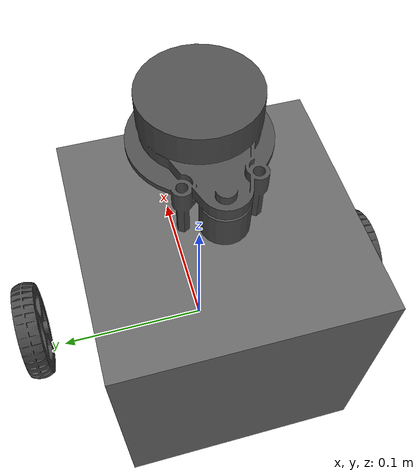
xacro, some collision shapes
<?xml version="1.0" ?>
<robot name="transbot_normal_for_autorace_2020" xmlns:xacro="http://ros.org/wiki/xacro">
  <xacro:include filename="$(find transbot_description)/urdf/common_properties.xacro"/>
  <xacro:include filename="$(find transbot_description)/urdf/transbot_normal_for_autorace_2020.gazebo.xacro"/>

  <link name="base_footprint"/>

  <joint name="base_joint" type="fixed">
    <parent link="base_footprint"/>
    <child link="base_link"/>
    <origin xyz="0.0 0.0 0.015" rpy="0 0 0"/>
  </joint>

  <link name="base_link">
    <visual>
      <origin xyz="-0.053 0 0.0" rpy="0 0 0"/>
      <geometry>
        <mesh filename="package://transbot_description/meshes/bases/normal_base.stl" scale="0.001 0.001 0.001"/>
      </geometry>
      <material name="light_black"/>
    </visual>

    <collision>
      <origin xyz="-0.032 0 0.070" rpy="0 0 0"/>
      <geometry>
        <box size="0.140 0.140 0.143"/>
      </geometry>
    </collision>

    <inertial>
      <origin xyz="-0.016 0 0" rpy="0 0 0"/>
      <mass value="8.2573504"/>
      <inertia ixx="2.2124416e-02" ixy="-1.2294101e-04" ixz="3.4938785e-04"
               iyy="2.1193702e-02" iyz="-5.0120904e-05"
               izz="2.0064271e-02" />
    </inertial>
  </link>

  <joint name="wheel_left_rear_joint" type="continuous">
    <parent link="base_link"/>
    <child link="wheel_left_link"/>
    <origin xyz="0.0 0.1155 0.01625" rpy="-1.57 0 0"/>
    <axis xyz="0 0 1"/>
  </joint>

  <link name="wheel_left_link">
    <visual>
      <origin xyz="0 0 0" rpy="1.57 0 0"/>
      <geometry>
        <mesh filename="package://transbot_description/meshes/wheels/left_normal.stl" scale="0.001 0.001 0.001"/>
      </geometry>
      <material name="dark"/>
    </visual>

    <collision>
      <origin xyz="0 0 0" rpy="0 0 0"/>
      <geometry>
        <cylinder length="0.018" radius="0.033"/>
      </geometry>
    </collision>

    <inertial>
      <origin xyz="0 0 0" />
      <mass value="2.8498940e-02" />
      <inertia ixx="1.1175580e-05" ixy="-4.2369783e-11" ixz="-5.9381719e-09"
               iyy="1.1192413e-05" iyz="-1.4400107e-11"
               izz="2.0712558e-05" />
      </inertial>
  </link>

  <joint name="wheel_right_rear_joint" type="continuous">
    <parent link="base_link"/>
    <child link="wheel_right_link"/>
    <origin xyz="0.0 -0.1155 0.01625" rpy="-1.57 0 0"/>
    <axis xyz="0 0 1"/>
  </joint>

  <link name="wheel_right_link">
    <visual>
      <origin xyz="0 0 0" rpy="1.57 0 0"/>
      <geometry>
        <mesh filename="package://transbot_description/meshes/wheels/right_normal.stl" scale="0.001 0.001 0.001"/>
      </geometry>
      <material name="dark"/>
    </visual>

    <collision>
      <origin xyz="0 0 0" rpy="0 0 0"/>
      <geometry>
        <cylinder length="0.018" radius="0.033"/>
      </geometry>
    </collision>

    <inertial>
      <origin xyz="0 0 0" />
      <mass value="2.8498940e-02" />
      <inertia ixx="1.1175580e-05" ixy="-4.2369783e-11" ixz="-5.9381719e-09"
               iyy="1.1192413e-05" iyz="-1.4400107e-11"
               izz="2.0712558e-05" />
      </inertial>
  </link>

<joint name="wheel_left_front_joint" type="continuous">
    <parent link="base_link"/>
    <child link="wheel_left_front_link"/>
    <origin xyz="-0.0915 0.1155 0.01625" rpy="-1.57 0 0"/>
    <axis xyz="0 0 1"/>
  </joint>

  <link name="wheel_left_front_link">
  </link>

  <joint name="wheel_right_front_joint" type="continuous">
    <parent link="base_link"/>
    <child link="wheel_right_front_link"/>
    <origin xyz="-0.0915 -0.1155 0.01625" rpy="-1.57 0 0"/>
    <axis xyz="0 0 1"/>
  </joint>

  <link name="wheel_right_front_link">
  </link>

  <joint name="caster_back_joint" type="fixed">
    <parent link="base_link"/>
    <child link="caster_back_link"/>
    <origin xyz="-0.11775 0 -0.004" rpy="-1.5707 0 0"/>
  </joint>

  <link name="caster_back_link">
    <collision>
      <origin xyz="0 0.000 0" rpy="0 0 0"/>
      <geometry>
        <box size="0.030 0.009 0.020"/>
      </geometry>
    </collision>

    <inertial>
      <origin xyz="0 0 0" />
      <mass value="0.000001" />
      <inertia ixx="0.000001" ixy="0.0" ixz="0.0"
               iyy="0.000001" iyz="0.0"
               izz="0.000001" />
    </inertial>
  </link>

  <joint name="imu_joint" type="fixed">
    <parent link="base_link"/>
    <child link="imu_link"/>
    <origin xyz="-0.07275 0 0.078" rpy="0 0 0"/>
  </joint>

  <link name="imu_link"/>

 <joint name="scan_joint" type="fixed">
    <parent link="base_link"/>
    <child link="base_scan"/>
    <origin xyz="0.0 0 0.192" rpy="0 0 0"/>
  </joint>

  <link name="base_scan">
    <visual>
      <origin xyz="0 0 0.0" rpy="0 0 0"/>
      <geometry>
        <mesh filename="package://transbot_description/meshes/sensors/yd-x2l.stl" scale="0.001 0.001 0.001"/>
      </geometry>
      <material name="dark"/>
    </visual>

    <collision>
      <origin xyz="0.015 0 -0.0065" rpy="0 0 0"/>
      <geometry>
        <cylinder length="0.0315" radius="0.055"/>
      </geometry>
    </collision>

    <inertial>
      <mass value="0.114" />
      <origin xyz="0 0 0" />
      <inertia ixx="0.001" ixy="0.0" ixz="0.0"
               iyy="0.001" iyz="0.0"
               izz="0.001" />
    </inertial>
  </link>

  <joint name="camera_dummy_joint" type="fixed">
    <origin xyz="0.0332 0.0 0.0934" rpy="0 0 0"/>
    <parent link="base_link"/>
    <child link="camera_dummy_link"/>
  </joint>

  <link name="camera_dummy_link">
    <collision>
      <origin xyz="0.0 0.0 0.0" rpy="0 0 0"/>
      <geometry>
        <box size="0.015 0.030 0.027"/>
      </geometry>
    </collision>
  </link>

  <joint name="camera_joint" type="fixed">
    <origin xyz="0.0 0.0 0.0" rpy="0 0 0"/>
    <parent link="camera_dummy_link"/>
    <child link="camera_frame"/>
  </joint>
  <link name="camera_frame"/>

  <joint name="camera_optical_joint" type="fixed">
    <origin xyz="0 0 0" rpy="-1.5707 0 -1.57"/>
    <parent link="camera_frame"/>
    <child link="camera_optical_frame"/>
  </joint>
  <link name="camera_optical_frame"/>

</robot>

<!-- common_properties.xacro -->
<robot name="xacro_properties" xmlns:xacro="http://ros.org/wiki/xacro">

  <!-- Init colour -->
  <material name="black">
      <color rgba="0.0 0.0 0.0 1.0"/>
  </material>

  <material name="dark">
    <color rgba="0.3 0.3 0.3 1.0"/>
  </material>
  <material name="light_black">
    <color rgba="0.4 0.4 0.4 1.0"/>
  </material>

  <material name="blue">
    <color rgba="0.0 0.0 0.8 1.0"/>
  </material>

  <material name="green">
    <color rgba="0.0 0.8 0.0 1.0"/>
  </material>

  <material name="grey">
    <color rgba="0.5 0.5 0.5 1.0"/>
  </material>

  <material name="orange">
    <color rgba="${255/255} ${108/255} ${10/255} 1.0"/>
  </material>

  <material name="brown">
    <color rgba="${222/255} ${207/255} ${195/255} 1.0"/>
  </material>

  <material name="red">
    <color rgba="0.8 0.0 0.0 1.0"/>
  </material>

  <material name="white">
    <color rgba="1.0 1.0 1.0 1.0"/>
  </material>
</robot>
